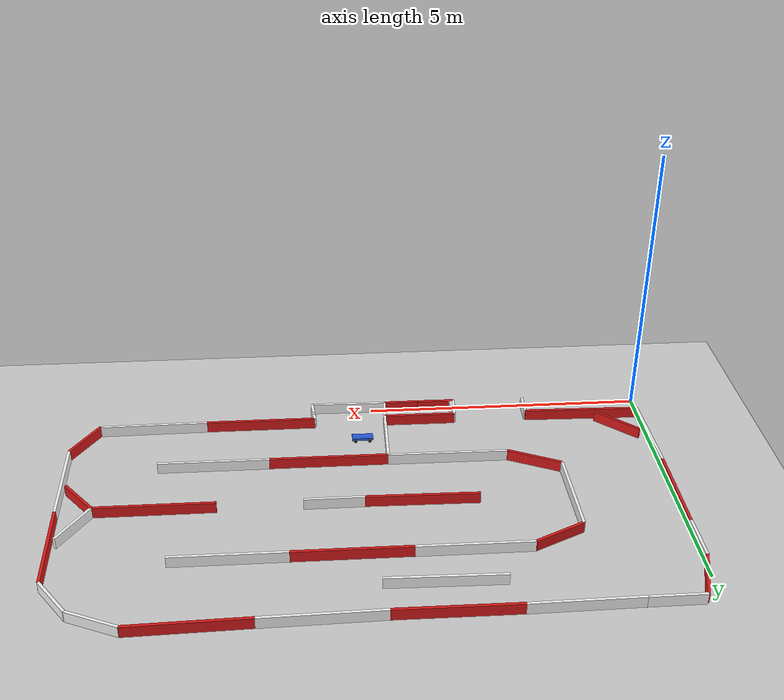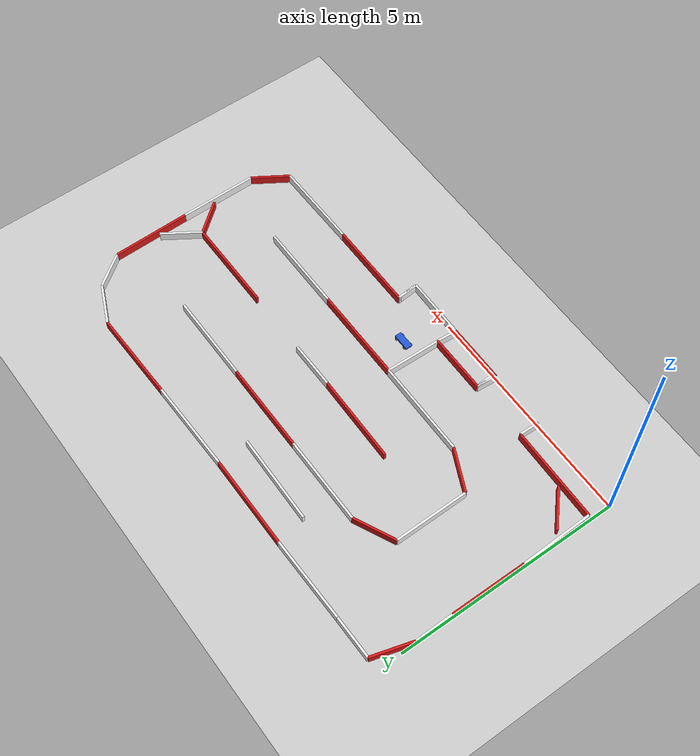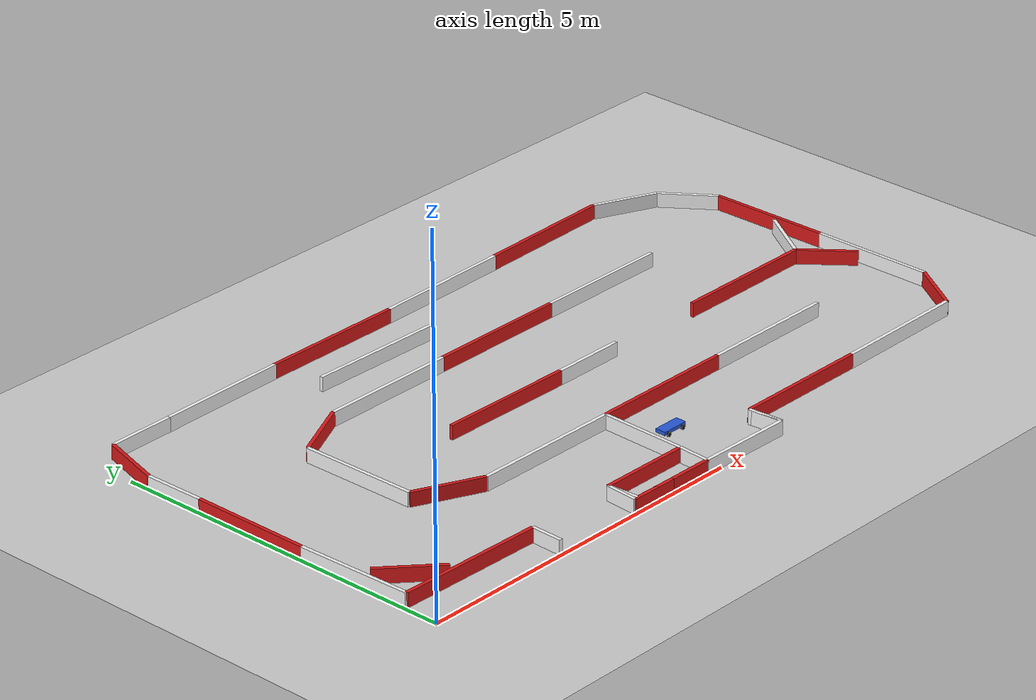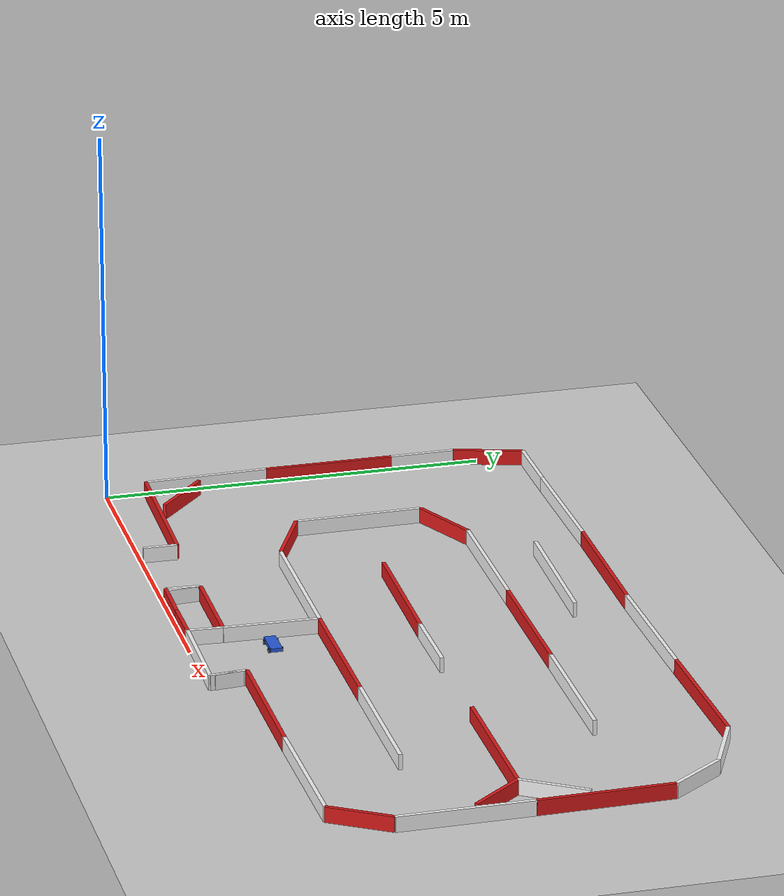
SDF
<?xml version="1.0" ?>
<sdf version="1.9">
  <world name="minicar_course_traced">
    <physics name="1ms" type="ignored"><max_step_size>0.001</max_step_size><real_time_factor>1.0</real_time_factor></physics>
    <plugin filename="gz-sim-physics-system" name="gz::sim::systems::Physics"/>
    <plugin filename="gz-sim-user-commands-system" name="gz::sim::systems::UserCommands"/>
    <plugin filename="gz-sim-scene-broadcaster-system" name="gz::sim::systems::SceneBroadcaster"/>
    <plugin filename="gz-sim-sensors-system" name="gz::sim::systems::Sensors"><render_engine>ogre2</render_engine></plugin>
    <plugin filename="gz-sim-imu-system" name="gz::sim::systems::Imu"/>
    <light type="directional" name="sun"><cast_shadows>true</cast_shadows><pose>0 0 10 0 0 0</pose>
      <diffuse>1 1 1 1</diffuse><specular>0.3 0.3 0.3 1</specular><direction>-0.3 0.2 -0.9</direction></light>
    <model name="ground_plane"><static>true</static><link name="link">
        <pose>5.235 2.846 0 0 0 0</pose>
        <collision name="c"><geometry><plane><normal>0 0 1</normal><size>16 10</size></plane></geometry></collision>
        <visual name="v"><geometry><plane><normal>0 0 1</normal><size>16 10</size></plane></geometry>
          <material><ambient>0.8 0.8 0.8 1</ambient><diffuse>0.8 0.8 0.8 1</diffuse></material></visual>
      </link></model>
    <model name="course_walls"><static>true</static>
    <link name="wall_0">
      <pose>8.107 5.665 0.100 0 0 -3.1146</pose>
      <collision name="c"><geometry><box><size>1.988 0.05 0.2</size></box></geometry></collision>
      <visual name="v"><geometry><box><size>1.988 0.05 0.2</size></box></geometry>
        <material><ambient>0.85 0.1 0.1 1</ambient><diffuse>0.85 0.1 0.1 1</diffuse></material>
      </visual>
    </link>
    <link name="wall_1">
      <pose>9.523 5.503 0.100 0 0 -0.4207</pose>
      <collision name="c"><geometry><box><size>0.926 0.05 0.2</size></box></geometry></collision>
      <visual name="v"><geometry><box><size>0.926 0.05 0.2</size></box></geometry>
        <material><ambient>0.95 0.95 0.95 1</ambient><diffuse>0.95 0.95 0.95 1</diffuse></material>
      </visual>
    </link>
    <link name="wall_2">
      <pose>6.104 5.617 0.100 0 0 -3.1207</pose>
      <collision name="c"><geometry><box><size>2.018 0.05 0.2</size></box></geometry></collision>
      <visual name="v"><geometry><box><size>2.018 0.05 0.2</size></box></geometry>
        <material><ambient>0.95 0.95 0.95 1</ambient><diffuse>0.95 0.95 0.95 1</diffuse></material>
      </visual>
    </link>
    <link name="wall_3">
      <pose>4.071 5.600 0.100 0 0 -0.0034</pose>
      <collision name="c"><geometry><box><size>2.049 0.05 0.2</size></box></geometry></collision>
      <visual name="v"><geometry><box><size>2.049 0.05 0.2</size></box></geometry>
        <material><ambient>0.85 0.1 0.1 1</ambient><diffuse>0.85 0.1 0.1 1</diffuse></material>
      </visual>
    </link>
    <link name="wall_4">
      <pose>2.120 5.590 0.100 0 0 -3.1274</pose>
      <collision name="c"><geometry><box><size>1.853 0.05 0.2</size></box></geometry></collision>
      <visual name="v"><geometry><box><size>1.853 0.05 0.2</size></box></geometry>
        <material><ambient>0.95 0.95 0.95 1</ambient><diffuse>0.95 0.95 0.95 1</diffuse></material>
      </visual>
    </link>
    <link name="wall_5">
      <pose>0.726 5.575 0.100 0 0 -3.1372</pose>
      <collision name="c"><geometry><box><size>0.935 0.05 0.2</size></box></geometry></collision>
      <visual name="v"><geometry><box><size>0.935 0.05 0.2</size></box></geometry>
        <material><ambient>0.95 0.95 0.95 1</ambient><diffuse>0.95 0.95 0.95 1</diffuse></material>
      </visual>
    </link>
    <link name="wall_6">
      <pose>0.129 5.129 0.100 0 0 -1.8541</pose>
      <collision name="c"><geometry><box><size>0.924 0.05 0.2</size></box></geometry></collision>
      <visual name="v"><geometry><box><size>0.924 0.05 0.2</size></box></geometry>
        <material><ambient>0.85 0.1 0.1 1</ambient><diffuse>0.85 0.1 0.1 1</diffuse></material>
      </visual>
    </link>
    <link name="wall_7">
      <pose>10.189 4.981 0.100 0 0 -0.9404</pose>
      <collision name="c"><geometry><box><size>0.826 0.05 0.2</size></box></geometry></collision>
      <visual name="v"><geometry><box><size>0.826 0.05 0.2</size></box></geometry>
        <material><ambient>0.95 0.95 0.95 1</ambient><diffuse>0.95 0.95 0.95 1</diffuse></material>
      </visual>
    </link>
    <link name="wall_8">
      <pose>4.173 4.918 0.100 0 0 -0.0181</pose>
      <collision name="c"><geometry><box><size>1.974 0.05 0.2</size></box></geometry></collision>
      <visual name="v"><geometry><box><size>1.974 0.05 0.2</size></box></geometry>
        <material><ambient>0.95 0.95 0.95 1</ambient><diffuse>0.95 0.95 0.95 1</diffuse></material>
      </visual>
    </link>
    <link name="wall_9">
      <pose>0.005 4.259 0.100 0 0 -1.5588</pose>
      <collision name="c"><geometry><box><size>0.852 0.05 0.2</size></box></geometry></collision>
      <visual name="v"><geometry><box><size>0.852 0.05 0.2</size></box></geometry>
        <material><ambient>0.95 0.95 0.95 1</ambient><diffuse>0.95 0.95 0.95 1</diffuse></material>
      </visual>
    </link>
    <link name="wall_10">
      <pose>10.446 3.789 0.100 0 0 -1.5547</pose>
      <collision name="c"><geometry><box><size>1.716 0.05 0.2</size></box></geometry></collision>
      <visual name="v"><geometry><box><size>1.716 0.05 0.2</size></box></geometry>
        <material><ambient>0.85 0.1 0.1 1</ambient><diffuse>0.85 0.1 0.1 1</diffuse></material>
      </visual>
    </link>
    <link name="wall_11">
      <pose>3.609 4.190 0.100 0 0 -0.0000</pose>
      <collision name="c"><geometry><box><size>1.953 0.05 0.2</size></box></geometry></collision>
      <visual name="v"><geometry><box><size>1.953 0.05 0.2</size></box></geometry>
        <material><ambient>0.95 0.95 0.95 1</ambient><diffuse>0.95 0.95 0.95 1</diffuse></material>
      </visual>
    </link>
    <link name="wall_12">
      <pose>2.203 3.984 0.100 0 0 -2.6938</pose>
      <collision name="c"><geometry><box><size>0.954 0.05 0.2</size></box></geometry></collision>
      <visual name="v"><geometry><box><size>0.954 0.05 0.2</size></box></geometry>
        <material><ambient>0.85 0.1 0.1 1</ambient><diffuse>0.85 0.1 0.1 1</diffuse></material>
      </visual>
    </link>
    <link name="wall_13">
      <pose>5.585 4.190 0.100 0 0 0.0000</pose>
      <collision name="c"><geometry><box><size>1.999 0.05 0.2</size></box></geometry></collision>
      <visual name="v"><geometry><box><size>1.999 0.05 0.2</size></box></geometry>
        <material><ambient>0.85 0.1 0.1 1</ambient><diffuse>0.85 0.1 0.1 1</diffuse></material>
      </visual>
    </link>
    <link name="wall_14">
      <pose>7.562 4.190 0.100 0 0 0.0000</pose>
      <collision name="c"><geometry><box><size>1.955 0.05 0.2</size></box></geometry></collision>
      <visual name="v"><geometry><box><size>1.955 0.05 0.2</size></box></geometry>
        <material><ambient>0.95 0.95 0.95 1</ambient><diffuse>0.95 0.95 0.95 1</diffuse></material>
      </visual>
    </link>
    <link name="wall_15">
      <pose>0.009 2.987 0.100 0 0 -1.5726</pose>
      <collision name="c"><geometry><box><size>1.693 0.05 0.2</size></box></geometry></collision>
      <visual name="v"><geometry><box><size>1.693 0.05 0.2</size></box></geometry>
        <material><ambient>0.85 0.1 0.1 1</ambient><diffuse>0.85 0.1 0.1 1</diffuse></material>
      </visual>
    </link>
    <link name="wall_16">
      <pose>1.782 2.947 0.100 0 0 -1.5598</pose>
      <collision name="c"><geometry><box><size>1.661 0.05 0.2</size></box></geometry></collision>
      <visual name="v"><geometry><box><size>1.661 0.05 0.2</size></box></geometry>
        <material><ambient>0.95 0.95 0.95 1</ambient><diffuse>0.95 0.95 0.95 1</diffuse></material>
      </visual>
    </link>
    <link name="wall_17">
      <pose>10.113 3.247 0.100 0 0 -2.1452</pose>
      <collision name="c"><geometry><box><size>0.908 0.05 0.2</size></box></geometry></collision>
      <visual name="v"><geometry><box><size>0.908 0.05 0.2</size></box></geometry>
        <material><ambient>0.95 0.95 0.95 1</ambient><diffuse>0.95 0.95 0.95 1</diffuse></material>
      </visual>
    </link>
    <link name="wall_18">
      <pose>10.465 2.075 0.100 0 0 -1.5649</pose>
      <collision name="c"><geometry><box><size>1.712 0.05 0.2</size></box></geometry></collision>
      <visual name="v"><geometry><box><size>1.712 0.05 0.2</size></box></geometry>
        <material><ambient>0.95 0.95 0.95 1</ambient><diffuse>0.95 0.95 0.95 1</diffuse></material>
      </visual>
    </link>
    <link name="wall_19">
      <pose>4.321 2.876 0.100 0 0 -0.0126</pose>
      <collision name="c"><geometry><box><size>1.957 0.05 0.2</size></box></geometry></collision>
      <visual name="v"><geometry><box><size>1.957 0.05 0.2</size></box></geometry>
        <material><ambient>0.85 0.1 0.1 1</ambient><diffuse>0.85 0.1 0.1 1</diffuse></material>
      </visual>
    </link>
    <link name="wall_20">
      <pose>5.821 2.866 0.100 0 0 -3.1364</pose>
      <collision name="c"><geometry><box><size>1.043 0.05 0.2</size></box></geometry></collision>
      <visual name="v"><geometry><box><size>1.043 0.05 0.2</size></box></geometry>
        <material><ambient>0.95 0.95 0.95 1</ambient><diffuse>0.95 0.95 0.95 1</diffuse></material>
      </visual>
    </link>
    <link name="wall_21">
      <pose>8.832 2.863 0.100 0 0 -3.1386</pose>
      <collision name="c"><geometry><box><size>2.069 0.05 0.2</size></box></geometry></collision>
      <visual name="v"><geometry><box><size>2.069 0.05 0.2</size></box></geometry>
        <material><ambient>0.85 0.1 0.1 1</ambient><diffuse>0.85 0.1 0.1 1</diffuse></material>
      </visual>
    </link>
    <link name="wall_22">
      <pose>10.123 2.547 0.100 0 0 -0.8944</pose>
      <collision name="c"><geometry><box><size>0.819 0.05 0.2</size></box></geometry></collision>
      <visual name="v"><geometry><box><size>0.819 0.05 0.2</size></box></geometry>
        <material><ambient>0.85 0.1 0.1 1</ambient><diffuse>0.85 0.1 0.1 1</diffuse></material>
      </visual>
    </link>
    <link name="wall_23">
      <pose>0.028 1.327 0.100 0 0 -1.5451</pose>
      <collision name="c"><geometry><box><size>1.629 0.05 0.2</size></box></geometry></collision>
      <visual name="v"><geometry><box><size>1.629 0.05 0.2</size></box></geometry>
        <material><ambient>0.95 0.95 0.95 1</ambient><diffuse>0.95 0.95 0.95 1</diffuse></material>
      </visual>
    </link>
    <link name="wall_24">
      <pose>2.240 1.909 0.100 0 0 -0.4321</pose>
      <collision name="c"><geometry><box><size>0.989 0.05 0.2</size></box></geometry></collision>
      <visual name="v"><geometry><box><size>0.989 0.05 0.2</size></box></geometry>
        <material><ambient>0.85 0.1 0.1 1</ambient><diffuse>0.85 0.1 0.1 1</diffuse></material>
      </visual>
    </link>
    <link name="wall_25">
      <pose>3.753 1.696 0.100 0 0 -0.0054</pose>
      <collision name="c"><geometry><box><size>2.128 0.05 0.2</size></box></geometry></collision>
      <visual name="v"><geometry><box><size>2.128 0.05 0.2</size></box></geometry>
        <material><ambient>0.95 0.95 0.95 1</ambient><diffuse>0.95 0.95 0.95 1</diffuse></material>
      </visual>
    </link>
    <link name="wall_26">
      <pose>5.867 1.690 0.100 0 0 0.0000</pose>
      <collision name="c"><geometry><box><size>2.100 0.05 0.2</size></box></geometry></collision>
      <visual name="v"><geometry><box><size>2.100 0.05 0.2</size></box></geometry>
        <material><ambient>0.85 0.1 0.1 1</ambient><diffuse>0.85 0.1 0.1 1</diffuse></material>
      </visual>
    </link>
    <link name="wall_27">
      <pose>4.801 1.079 0.100 0 0 -1.5961</pose>
      <collision name="c"><geometry><box><size>1.224 0.05 0.2</size></box></geometry></collision>
      <visual name="v"><geometry><box><size>1.224 0.05 0.2</size></box></geometry>
        <material><ambient>0.95 0.95 0.95 1</ambient><diffuse>0.95 0.95 0.95 1</diffuse></material>
      </visual>
    </link>
    <link name="wall_28">
      <pose>7.897 1.691 0.100 0 0 0.0004</pose>
      <collision name="c"><geometry><box><size>1.961 0.05 0.2</size></box></geometry></collision>
      <visual name="v"><geometry><box><size>1.961 0.05 0.2</size></box></geometry>
        <material><ambient>0.95 0.95 0.95 1</ambient><diffuse>0.95 0.95 0.95 1</diffuse></material>
      </visual>
    </link>
    <link name="wall_29">
      <pose>10.240 0.856 0.100 0 0 -2.1358</pose>
      <collision name="c"><geometry><box><size>0.858 0.05 0.2</size></box></geometry></collision>
      <visual name="v"><geometry><box><size>0.858 0.05 0.2</size></box></geometry>
        <material><ambient>0.85 0.1 0.1 1</ambient><diffuse>0.85 0.1 0.1 1</diffuse></material>
      </visual>
    </link>
    <link name="wall_30">
      <pose>0.510 0.894 0.100 0 0 -0.7341</pose>
      <collision name="c"><geometry><box><size>0.921 0.05 0.2</size></box></geometry></collision>
      <visual name="v"><geometry><box><size>0.921 0.05 0.2</size></box></geometry>
        <material><ambient>0.85 0.1 0.1 1</ambient><diffuse>0.85 0.1 0.1 1</diffuse></material>
      </visual>
    </link>
    <link name="wall_31">
      <pose>1.099 0.490 0.100 0 0 -0.0219</pose>
      <collision name="c"><geometry><box><size>2.100 0.05 0.2</size></box></geometry></collision>
      <visual name="v"><geometry><box><size>2.100 0.05 0.2</size></box></geometry>
        <material><ambient>0.85 0.1 0.1 1</ambient><diffuse>0.85 0.1 0.1 1</diffuse></material>
      </visual>
    </link>
    <link name="wall_32">
      <pose>9.037 0.484 0.100 0 0 -3.1307</pose>
      <collision name="c"><geometry><box><size>1.947 0.05 0.2</size></box></geometry></collision>
      <visual name="v"><geometry><box><size>1.947 0.05 0.2</size></box></geometry>
        <material><ambient>0.95 0.95 0.95 1</ambient><diffuse>0.95 0.95 0.95 1</diffuse></material>
      </visual>
    </link>
    <link name="wall_33">
      <pose>4.136 0.470 0.100 0 0 -0.0046</pose>
      <collision name="c"><geometry><box><size>1.299 0.05 0.2</size></box></geometry></collision>
      <visual name="v"><geometry><box><size>1.299 0.05 0.2</size></box></geometry>
        <material><ambient>0.85 0.1 0.1 1</ambient><diffuse>0.85 0.1 0.1 1</diffuse></material>
      </visual>
    </link>
    <link name="wall_34">
      <pose>3.470 0.250 0.100 0 0 -1.6419</pose>
      <collision name="c"><geometry><box><size>0.445 0.05 0.2</size></box></geometry></collision>
      <visual name="v"><geometry><box><size>0.445 0.05 0.2</size></box></geometry>
        <material><ambient>0.95 0.95 0.95 1</ambient><diffuse>0.95 0.95 0.95 1</diffuse></material>
      </visual>
    </link>
    <link name="wall_35">
      <pose>3.500 0.250 0.100 0 0 -1.5068</pose>
      <collision name="c"><geometry><box><size>0.446 0.05 0.2</size></box></geometry></collision>
      <visual name="v"><geometry><box><size>0.446 0.05 0.2</size></box></geometry>
        <material><ambient>0.95 0.95 0.95 1</ambient><diffuse>0.95 0.95 0.95 1</diffuse></material>
      </visual>
    </link>
    <link name="wall_36">
      <pose>7.074 0.473 0.100 0 0 0.0001</pose>
      <collision name="c"><geometry><box><size>1.979 0.05 0.2</size></box></geometry></collision>
      <visual name="v"><geometry><box><size>1.979 0.05 0.2</size></box></geometry>
        <material><ambient>0.85 0.1 0.1 1</ambient><diffuse>0.85 0.1 0.1 1</diffuse></material>
      </visual>
    </link>
    <link name="wall_37">
      <pose>6.104 0.264 0.100 0 0 -1.4750</pose>
      <collision name="c"><geometry><box><size>0.421 0.05 0.2</size></box></geometry></collision>
      <visual name="v"><geometry><box><size>0.421 0.05 0.2</size></box></geometry>
        <material><ambient>0.95 0.95 0.95 1</ambient><diffuse>0.95 0.95 0.95 1</diffuse></material>
      </visual>
    </link>
    <link name="wall_38">
      <pose>6.104 0.236 0.100 0 0 -1.4890</pose>
      <collision name="c"><geometry><box><size>0.474 0.05 0.2</size></box></geometry></collision>
      <visual name="v"><geometry><box><size>0.474 0.05 0.2</size></box></geometry>
        <material><ambient>0.95 0.95 0.95 1</ambient><diffuse>0.95 0.95 0.95 1</diffuse></material>
      </visual>
    </link>
    <link name="wall_39">
      <pose>2.144 0.245 0.100 0 0 -1.5919</pose>
      <collision name="c"><geometry><box><size>0.444 0.05 0.2</size></box></geometry></collision>
      <visual name="v"><geometry><box><size>0.444 0.05 0.2</size></box></geometry>
        <material><ambient>0.95 0.95 0.95 1</ambient><diffuse>0.95 0.95 0.95 1</diffuse></material>
      </visual>
    </link>
    <link name="wall_40">
      <pose>4.772 0.244 0.100 0 0 -1.6323</pose>
      <collision name="c"><geometry><box><size>0.446 0.05 0.2</size></box></geometry></collision>
      <visual name="v"><geometry><box><size>0.446 0.05 0.2</size></box></geometry>
        <material><ambient>0.95 0.95 0.95 1</ambient><diffuse>0.95 0.95 0.95 1</diffuse></material>
      </visual>
    </link>
    <link name="wall_41">
      <pose>3.792 0.025 0.100 0 0 -0.0096</pose>
      <collision name="c"><geometry><box><size>0.676 0.05 0.2</size></box></geometry></collision>
      <visual name="v"><geometry><box><size>0.676 0.05 0.2</size></box></geometry>
        <material><ambient>0.85 0.1 0.1 1</ambient><diffuse>0.85 0.1 0.1 1</diffuse></material>
      </visual>
    </link>
    <link name="wall_42">
      <pose>3.822 0.025 0.100 0 0 -0.0098</pose>
      <collision name="c"><geometry><box><size>0.615 0.05 0.2</size></box></geometry></collision>
      <visual name="v"><geometry><box><size>0.615 0.05 0.2</size></box></geometry>
        <material><ambient>0.85 0.1 0.1 1</ambient><diffuse>0.85 0.1 0.1 1</diffuse></material>
      </visual>
    </link>
    <link name="wall_43">
      <pose>4.444 0.022 0.100 0 0 -0.0001</pose>
      <collision name="c"><geometry><box><size>0.628 0.05 0.2</size></box></geometry></collision>
      <visual name="v"><geometry><box><size>0.628 0.05 0.2</size></box></geometry>
        <material><ambient>0.85 0.1 0.1 1</ambient><diffuse>0.85 0.1 0.1 1</diffuse></material>
      </visual>
    </link>
    <link name="wall_44">
      <pose>5.441 0.011 0.100 0 0 -0.0160</pose>
      <collision name="c"><geometry><box><size>1.365 0.05 0.2</size></box></geometry></collision>
      <visual name="v"><geometry><box><size>1.365 0.05 0.2</size></box></geometry>
        <material><ambient>0.95 0.95 0.95 1</ambient><diffuse>0.95 0.95 0.95 1</diffuse></material>
      </visual>
    </link>
    </model>

    <!-- lidar/imu 付きミニカー(別ファイル models/tt02 を include)。TT-02 実寸(全長~0.38m)。
         モデル原点は地面レベルなので spawn z は僅かに浮かせて着地。
         スポーン位置はコース下段の開けた場所(要調整)。GZ_SIM_RESOURCE_PATH=/worlds/models 必要。 -->
    <include>
      <uri>model://tt02</uri>
      <pose>5.23 1.0 0.05 0 0 0</pose>
    </include>
  </world>
</sdf>

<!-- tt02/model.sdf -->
<sdf version="1.9">
  <model name='tt02'>

    <!-- 車体(シャーシ+ボディ相当の箱)。前後軸中点=x0, 地上クリアランス~3cm。 -->
    <link name='chassis'>
      <pose>0 0 0.055 0 0 0</pose>
      <inertial>
        <mass>1.5</mass>
        <inertia>
          <ixx>0.003125</ixx><ixy>0</ixy><ixz>0</ixz>
          <iyy>0.018360</iyy><iyz>0</iyz>
          <izz>0.020860</izz>
        </inertia>
      </inertial>
      <visual name='visual'>
        <geometry><box><size>0.38 0.15 0.05</size></box></geometry>
        <material>
          <ambient>0.15 0.35 0.85 1</ambient>
          <diffuse>0.15 0.35 0.85 1</diffuse>
          <specular>0.1 0.1 0.3 1</specular>
        </material>
      </visual>
      <collision name='collision'>
        <geometry><box><size>0.38 0.15 0.05</size></box></geometry>
      </collision>

      <sensor name="gpu_lidar" type="gpu_lidar">
        <pose>0.10 0 0.045 0 0 0</pose>
        <topic>scan</topic>
        <update_rate>10</update_rate>
        <lidar>
          <scan>
            <horizontal>
              <samples>640</samples>
              <resolution>1</resolution>
              <min_angle>-2.356</min_angle>
              <max_angle>2.356</max_angle>
            </horizontal>
            <vertical>
              <samples>1</samples>
              <min_angle>0</min_angle>
              <max_angle>0</max_angle>
            </vertical>
          </scan>
          <range>
            <min>0.1</min>
            <max>30.0</max>
            <resolution>0.01</resolution>
          </range>
          <noise>
            <type>gaussian</type>
            <mean>0.0</mean>
            <stddev>0.01</stddev>
          </noise>
        </lidar>
        <always_on>1</always_on>
        <visualize>true</visualize>
      </sensor>

      <sensor name="imu" type="imu">
        <pose>0 0 0 0 0 0</pose>
        <topic>imu</topic>
        <update_rate>100</update_rate>
        <always_on>1</always_on>
      </sensor>
    </link>

    <!-- ===== 車輪(cyl: length=幅0.024, radius=0.0315)。roll -1.5707 で軸を y に。 ===== -->
    <link name='front_left_wheel'>
      <pose>0.1285 0.083 0.0315 -1.5707 0 0</pose>
      <inertial>
        <mass>0.05</mass>
        <inertia><ixx>0.0000148</ixx><ixy>0</ixy><ixz>0</ixz><iyy>0.0000148</iyy><iyz>0</iyz><izz>0.0000248</izz></inertia>
      </inertial>
      <visual name='visual'>
        <geometry><cylinder><length>0.024</length><radius>0.0315</radius></cylinder></geometry>
        <material><ambient>0.1 0.1 0.1 1</ambient><diffuse>0.1 0.1 0.1 1</diffuse></material>
      </visual>
      <collision name='collision'>
        <geometry><cylinder><length>0.024</length><radius>0.0315</radius></cylinder></geometry>
        <surface><friction><ode><mu>0.9</mu><mu2>1.0</mu2><fdir1>0 0 1</fdir1></ode></friction></surface>
      </collision>
    </link>

    <link name='rear_left_wheel'>
      <pose>-0.1285 0.083 0.0315 -1.5707 0 0</pose>
      <inertial>
        <mass>0.05</mass>
        <inertia><ixx>0.0000148</ixx><ixy>0</ixy><ixz>0</ixz><iyy>0.0000148</iyy><iyz>0</iyz><izz>0.0000248</izz></inertia>
      </inertial>
      <visual name='visual'>
        <geometry><cylinder><length>0.024</length><radius>0.0315</radius></cylinder></geometry>
        <material><ambient>0.1 0.1 0.1 1</ambient><diffuse>0.1 0.1 0.1 1</diffuse></material>
      </visual>
      <collision name='collision'>
        <geometry><cylinder><length>0.024</length><radius>0.0315</radius></cylinder></geometry>
        <surface><friction><ode><mu>0.9</mu><mu2>1.0</mu2><fdir1>0 0 1</fdir1></ode></friction></surface>
      </collision>
    </link>

    <link name='front_right_wheel'>
      <pose>0.1285 -0.083 0.0315 -1.5707 0 0</pose>
      <inertial>
        <mass>0.05</mass>
        <inertia><ixx>0.0000148</ixx><ixy>0</ixy><ixz>0</ixz><iyy>0.0000148</iyy><iyz>0</iyz><izz>0.0000248</izz></inertia>
      </inertial>
      <visual name='visual'>
        <geometry><cylinder><length>0.024</length><radius>0.0315</radius></cylinder></geometry>
        <material><ambient>0.1 0.1 0.1 1</ambient><diffuse>0.1 0.1 0.1 1</diffuse></material>
      </visual>
      <collision name='collision'>
        <geometry><cylinder><length>0.024</length><radius>0.0315</radius></cylinder></geometry>
        <surface><friction><ode><mu>0.9</mu><mu2>1.0</mu2><fdir1>0 0 1</fdir1></ode></friction></surface>
      </collision>
    </link>

    <link name='rear_right_wheel'>
      <pose>-0.1285 -0.083 0.0315 -1.5707 0 0</pose>
      <inertial>
        <mass>0.05</mass>
        <inertia><ixx>0.0000148</ixx><ixy>0</ixy><ixz>0</ixz><iyy>0.0000148</iyy><iyz>0</iyz><izz>0.0000248</izz></inertia>
      </inertial>
      <visual name='visual'>
        <geometry><cylinder><length>0.024</length><radius>0.0315</radius></cylinder></geometry>
        <material><ambient>0.1 0.1 0.1 1</ambient><diffuse>0.1 0.1 0.1 1</diffuse></material>
      </visual>
      <collision name='collision'>
        <geometry><cylinder><length>0.024</length><radius>0.0315</radius></cylinder></geometry>
        <surface><friction><ode><mu>0.9</mu><mu2>1.0</mu2><fdir1>0 0 1</fdir1></ode></friction></surface>
      </collision>
    </link>

    <!-- ===== 前輪キングピン(操舵リンク): 前軸・僅かに内側・鉛直軸で操舵 ===== -->
    <link name="front_left_wheel_steering_link">
      <pose>0.1285 0.07 0.0315 0 0 0</pose>
      <inertial>
        <mass>0.02</mass>
        <inertia><ixx>0.00001</ixx><iyy>0.00001</iyy><izz>0.00001</izz></inertia>
      </inertial>
      <visual name="steering_link_visual">
        <geometry><cylinder><length>0.03</length><radius>0.006</radius></cylinder></geometry>
        <material><ambient>0.8 0.8 0.8 1</ambient><diffuse>0.8 0.8 0.8 1</diffuse></material>
      </visual>
    </link>

    <link name="front_right_wheel_steering_link">
      <pose>0.1285 -0.07 0.0315 0 0 0</pose>
      <inertial>
        <mass>0.02</mass>
        <inertia><ixx>0.00001</ixx><iyy>0.00001</iyy><izz>0.00001</izz></inertia>
      </inertial>
      <visual name="steering_link_visual">
        <geometry><cylinder><length>0.03</length><radius>0.006</radius></cylinder></geometry>
        <material><ambient>0.8 0.8 0.8 1</ambient><diffuse>0.8 0.8 0.8 1</diffuse></material>
      </visual>
    </link>

    <!-- ===== ジョイント ===== -->
    <joint name="front_left_wheel_steering_joint" type="revolute">
      <child>front_left_wheel_steering_link</child>
      <parent>chassis</parent>
      <axis>
        <xyz>0 0 1</xyz>
        <!-- velocity は実機サーボ相当の 10rad/s(≒570deg/s)。1.0 のままだと
             steer_p_gain を上げてもこの上限が律速になって速くならない。 -->
        <limit><lower>-0.6</lower><upper>0.6</upper><velocity>10.0</velocity><effort>5</effort></limit>
      </axis>
    </joint>

    <joint name="front_right_wheel_steering_joint" type="revolute">
      <parent>chassis</parent>
      <child>front_right_wheel_steering_link</child>
      <axis>
        <xyz>0 0 1</xyz>
        <limit><lower>-0.6</lower><upper>0.6</upper><velocity>10.0</velocity><effort>5</effort></limit>
      </axis>
    </joint>

    <joint name='front_left_wheel_joint' type='revolute'>
      <parent>front_left_wheel_steering_link</parent>
      <child>front_left_wheel</child>
      <axis><xyz>0 0 1</xyz><limit><lower>-1.79769e+308</lower><upper>1.79769e+308</upper></limit></axis>
    </joint>

    <joint name='front_right_wheel_joint' type='revolute'>
      <parent>front_right_wheel_steering_link</parent>
      <child>front_right_wheel</child>
      <axis><xyz>0 0 1</xyz><limit><lower>-1.79769e+308</lower><upper>1.79769e+308</upper></limit></axis>
    </joint>

    <joint name='rear_left_wheel_joint' type='revolute'>
      <parent>chassis</parent>
      <child>rear_left_wheel</child>
      <axis><xyz>0 0 1</xyz><limit><lower>-1.79769e+308</lower><upper>1.79769e+308</upper></limit></axis>
    </joint>

    <joint name='rear_right_wheel_joint' type='revolute'>
      <parent>chassis</parent>
      <child>rear_right_wheel</child>
      <axis><xyz>0 0 1</xyz><limit><lower>-1.79769e+308</lower><upper>1.79769e+308</upper></limit></axis>
    </joint>

    <!-- Ackermann 駆動+操舵。cmd_vel(Twist) を /model/tt02/cmd_vel で購読。 -->
    <plugin filename="gz-sim-ackermann-steering-system" name="gz::sim::systems::AckermannSteering">
      <left_joint>front_left_wheel_joint</left_joint>
      <left_joint>rear_left_wheel_joint</left_joint>
      <right_joint>front_right_wheel_joint</right_joint>
      <right_joint>rear_right_wheel_joint</right_joint>
      <left_steering_joint>front_left_wheel_steering_joint</left_steering_joint>
      <right_steering_joint>front_right_wheel_steering_joint</right_steering_joint>
      <kingpin_width>0.14</kingpin_width>
      <steering_limit>0.5</steering_limit>
      <steer_p_gain>15.0</steer_p_gain>
      <wheel_base>0.257</wheel_base>
      <wheel_separation>0.166</wheel_separation>
      <wheel_radius>0.0315</wheel_radius>
      <min_velocity>-2</min_velocity>
      <max_velocity>5</max_velocity>
      <min_acceleration>-3</min_acceleration>
      <max_acceleration>3</max_acceleration>
    </plugin>

    <plugin filename="gz-sim-joint-state-publisher-system"
            name="gz::sim::systems::JointStatePublisher">
      <joint_name>front_left_wheel_steering_joint</joint_name>
      <joint_name>front_right_wheel_steering_joint</joint_name>
    </plugin>

    <plugin filename="gz-sim-odometry-publisher-system"
            name="gz::sim::systems::OdometryPublisher">
      <odom_topic>/ground_truth/odom</odom_topic>
      <odom_frame>world</odom_frame>
      <robot_base_frame>tt02_gt</robot_base_frame>
      <odom_publish_frequency>50</odom_publish_frequency>
      <dimensions>2</dimensions>
    </plugin>

  </model>
</sdf>
